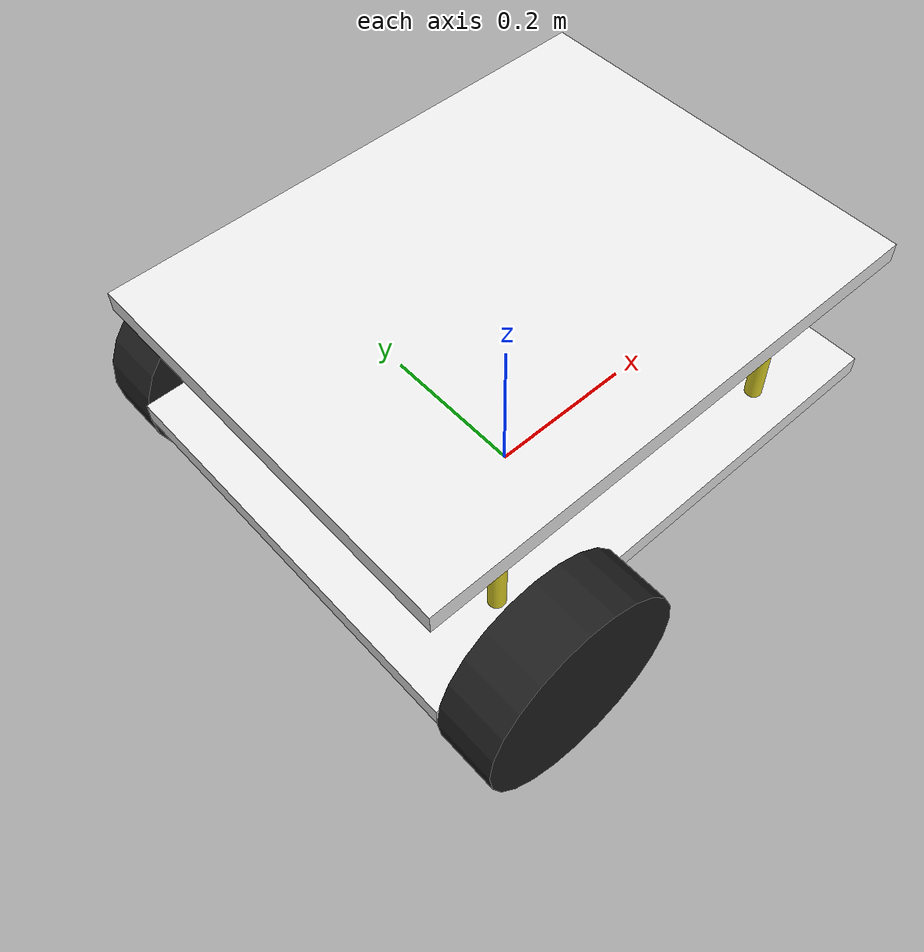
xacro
<?xml version="1.0"?>

<robot xmlns:xacro="http://www.ros.org/wiki/xacro">

    <xacro:property name="base_length" value="0.65"/>
    <xacro:property name="base_width" value="0.5"/>
    <xacro:property name="base_height" value="0.025"/>
    <xacro:property name="base_distance" value="0.20"/>
    <xacro:property name="wheel_radius" value="0.125"/>
    <xacro:property name="wheel_length" value="0.075"/>
    <xacro:property name="hex_crew_radius" value="0.01"/>
    <xacro:property name="hex_crew_height" value="0.175"/>

    <xacro:macro name="hex_crew_link" params="prefix">
        <link name="${prefix}_hex_crew_link">
            <visual>
                <geometry>
                    <cylinder radius="${hex_crew_radius}" length="${base_distance}" />
                </geometry>
                <origin xyz="0 0 0" rpy="0 0 0" />
                <material name="yellow" />
            </visual>
            <collision>
                <geometry>
                    <sphere radius="${hex_crew_radius}" />
                </geometry>
                <origin xyz="0 0 0" rpy="0 0 0" />
            </collision>
            <xacro:cylinder_inertia mass="0.05" radius="${hex_crew_radius}" height="${base_distance}" o_xyz="0 0 0" o_rpy="0 0 0" />
        </link>
    </xacro:macro>

    <xacro:hex_crew_link prefix="first"/>
    <xacro:hex_crew_link prefix="second"/>
    <xacro:hex_crew_link prefix="third"/>
    <xacro:hex_crew_link prefix="fourth"/>

    <xacro:macro name="wheel_link" params="prefix">
        <link name="${prefix}_wheel_link">
            <visual>
                <geometry>
                    <cylinder radius="${wheel_radius}" length="${wheel_length}" />
                </geometry>
                <origin xyz="0 0 0" rpy="${pi / 2.0} 0 0" />
                <material name="black" />
            </visual>
            <collision>
                <geometry>
                    <sphere radius="${wheel_radius}" />
                </geometry>
                <origin xyz="0 0 0" rpy="0 0 0" />
            </collision>
            <xacro:cylinder_inertia mass="0.25" radius="${wheel_radius}" height="${wheel_length}" o_xyz="0 0 0" o_rpy="${pi / 2.0} 0 0" />
        </link>
    </xacro:macro>

    <xacro:wheel_link prefix="right"/>
    <xacro:wheel_link prefix="left"/>

    <xacro:macro name="castor_wheel_link" params="prefix">
        <link name="${prefix}_castor_wheel_link">
            <visual>
                <geometry>
                    <sphere radius="${wheel_radius / 2}" />
                </geometry>
            <material name="yellow" />
            </visual>
            <collision>
                <geometry>
                    <sphere radius="${wheel_radius / 2}" />
                </geometry>
                <origin xyz="0 0 0" rpy="0 0 0" />
            </collision>
            <xacro:sphere_inertia mass="0.25" radius="${wheel_radius / 2.0}" o_xyz="0 0 0" o_rpy="0 0 0" />
        </link>
    </xacro:macro>

    <xacro:castor_wheel_link prefix="first"/>

    <link name="base_footprint"/>

    <link name="base_link">
        <visual>
            <geometry>
                <box size="${base_length} ${base_width} ${base_height}" />
            </geometry>
            <origin xyz="0 0 ${base_height / 2.0}" rpy="0 0 0" />
            <material name="white" />
        </visual>
        <collision>
            <geometry>
                <box size="${base_length} ${base_width} ${base_height}" />
            </geometry>
            <origin xyz="0 0 ${base_height / 2.0}" rpy="0 0 0" />
        </collision>
        <xacro:box_inertia mass="0.5" x="${base_length}" y="${base_width}" z="${base_height}" o_xyz="0 0 ${base_height / 2.0}" o_rpy="0 0 0" />
    </link>

    <joint name="base_joint" type="fixed">
        <parent link="base_footprint"/>
        <child link="base_link" />
        <origin xyz="0 0 ${wheel_radius}" rpy="0 0 0"/>
    </joint>

    <link name="second_base_link">
        <visual>
            <geometry>
                <box size="${base_length} ${base_width} ${base_height}" />
            </geometry>
            <origin xyz="0 0 0" rpy="0 0 0" />
            <material name="white" />
        </visual>
        <collision>
            <geometry>
                <box size="${base_length} ${base_width} ${base_height}" />
            </geometry>
            <origin xyz="0 0 ${base_height / 2.0}" rpy="0 0 0" />
        </collision>
        <xacro:box_inertia mass="0.5" x="${base_length}" y="${base_width}" z="${base_height}"
                           o_xyz="0 0 ${base_height / 2.0}" o_rpy="0 0 0" />
    </link>

    <joint name="second_base_joint" type="fixed">
        <parent link="base_link" />
        <child link="second_base_link" />
        <origin xyz="0 0 ${base_distance}" rpy="0 0 0" />
    </joint>

    <joint name="base_right_wheel_joint" type="continuous">
        <parent link="base_link" />
        <child link="right_wheel_link" />
        <origin xyz="-${base_width / 2.5} ${(base_width + wheel_length) / 2.0} 0" rpy="0 0 0" />
        <axis xyz="0 1 0" />
    </joint>

    <joint name="base_left_wheel_joint" type="continuous">
        <parent link="base_link" />
        <child link="left_wheel_link" />
        <origin xyz="-${base_width / 2.5} -${(base_width + wheel_length) / 2.0} 0" rpy="0 0 0" />
        <axis xyz="0 1 0" />
    </joint>

    <joint name="base_castor_wheel_joint" type="fixed">
        <parent link="base_link" />
        <child link="first_castor_wheel_link" />
        <origin xyz="${base_width / 2} 0 -${wheel_radius / 2}" rpy="0 0 0" />
    </joint>

    <joint name="first_hex_crew_joint" type="fixed">
        <parent link="base_link" />
        <child link="first_hex_crew_link" />
        <origin xyz="-${base_width / 2.5} -${base_width / 2.5} ${base_distance / 2.0}" rpy="0 0 0" />
    </joint>

    <joint name="second_hex_crew_joint" type="fixed">
        <parent link="base_link" />
        <child link="second_hex_crew_link" />
        <origin xyz="${base_width / 2.5} ${base_width / 2.5} ${base_distance / 2.0}" rpy="0 0 0" />
    </joint>

    <joint name="third_hex_crew_joint" type="fixed">
        <parent link="base_link" />
        <child link="third_hex_crew_link" />
        <origin xyz="${base_width / 2.5} -${base_width / 2.5} ${base_distance / 2.0}" rpy="0 0 0" />
    </joint>

    <joint name="fourth_hex_crew_joint" type="fixed">
        <parent link="base_link" />
        <child link="fourth_hex_crew_link" />
        <origin xyz="-${base_width / 2.5} ${base_width / 2.5} ${base_distance / 2.0}" rpy="0 0 0" />
    </joint>

</robot>
